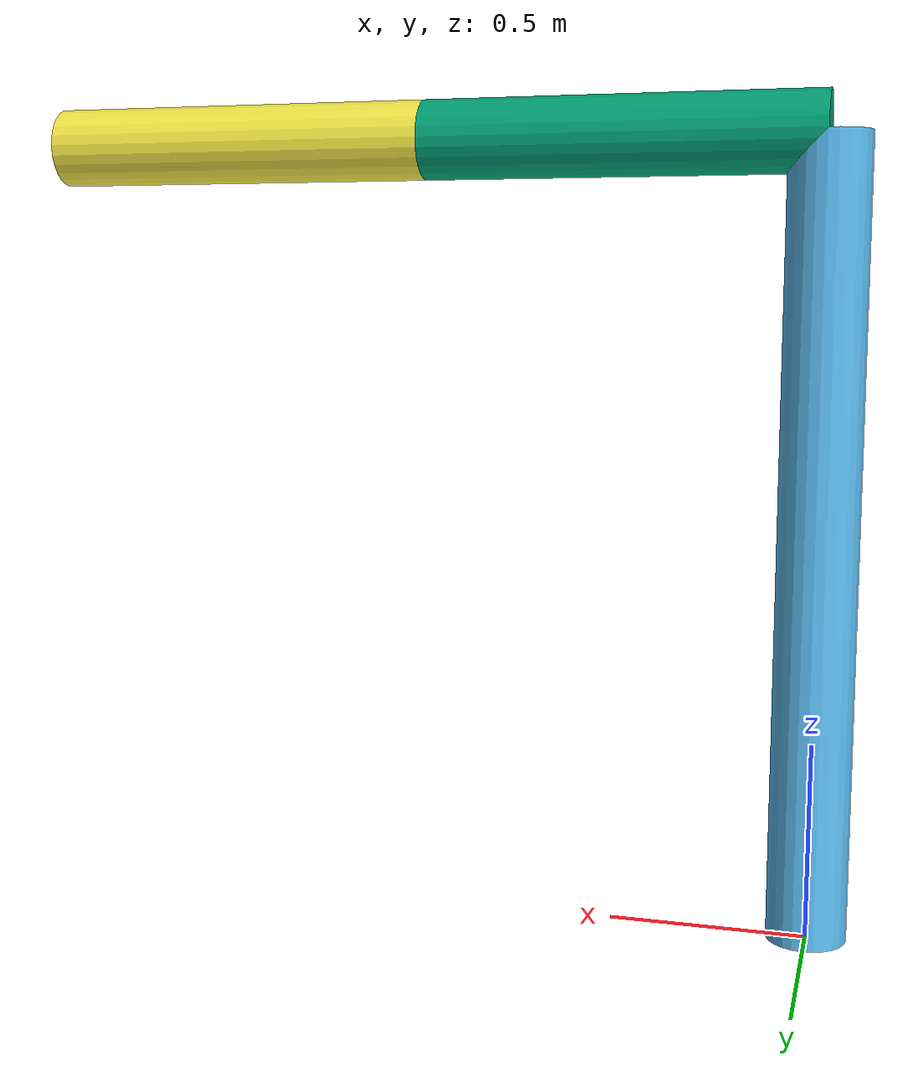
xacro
<?xml version="1.0" ?>

<robot name="robot_arm" xmlns:xacro="http://www.ros.org/wiki/xacro">

    <!-- BGN - Include -->

    <xacro:include filename="$(find robot_package)/urdf/links_joints.xacro" />
    <xacro:include filename="$(find robot_package)/urdf/robot_parameters.xacro" />
    <!-- END - Include -->

    <link name="world"/>
    <xacro:m_joint name="${l00}__${l01}"
                   type="revolute"
                   axis_xyz="0 0 1"
                   origin_rpy="0 0 0" origin_xyz="0 0 0"
                   parent="world"
                   child="${l01}"
                   limit_e="1000"
                   limit_l="-6.28319"
                   limit_u="6.28319"
                   limit_v="0.5"/>

    <xacro:m_link_cylinder name="${l01}"
                origin_rpy="0 0 0" origin_xyz="0 0 1"
                mass = "157.633"
                ixx="13.235" ixy="0" ixz="0"
                iyy="13.235" iyz="0"
                izz="9.655"
                radius = "0.1"
                length="2"/>

    <xacro:m_joint name="${l01}__${l02}"
                   type="revolute"
                   axis_xyz="0 -1 0"
                   origin_rpy="0 1.57 0" origin_xyz="0 0 2"
                   parent="${l01}"
                   child="${l02}"
                   limit_e="10"
                   limit_l="-3.14"
                   limit_u="3.14"
                   limit_v="0.5"/>

    <xacro:m_link_cylinder name="${l02}"
                origin_rpy="0 0 0" origin_xyz="0 0 0.5"
                mass = "0.1"
                ixx="0" ixy="0" ixz="0"
                iyy="0" iyz="0"
                izz="0"
                radius = "0.1"
                length="1"/>

    <xacro:m_joint name="${l02}__${l03}"
                   type="revolute"
                   axis_xyz="0 -1 0"
                   origin_rpy="0 0 0" origin_xyz="0 0 1"
                   parent="${l02}"
                   child="${l03}"
                   limit_e="10"
                   limit_l="-3.14"
                   limit_u="3.14"
                   limit_v="0.5"/>

    <xacro:m_link_cylinder name="${l03}"
                origin_rpy="0 0 0" origin_xyz="0 0 0.5"
                mass = "0.05"
                ixx="0" ixy="0" ixz="0"
                iyy="0" iyz="0"
                izz="0"
                radius = "0.1"
                length="1"/>

     <xacro:m_joint name="${l03}__${lee}"
                   type="revolute"
                   axis_xyz="0 1 0"
                   origin_rpy="0 0 0" origin_xyz="0 0 1"
                   parent="${l03}"
                   child="${lee}"
                   limit_e="10"
                   limit_l="0"
                   limit_u="0"
                   limit_v="0.5"/>

    <xacro:m_link_cylinder name="${lee}"
                origin_rpy="0 0 0" origin_xyz="0 0 0"
                mass = "0.05"
                ixx="0" ixy="0" ixz="0"
                iyy="0" iyz="0"
                izz="0"
                radius = "0.01"
                length="0"/>
    <gazebo>
        <plugin name ="gazebo_ros_control" filename="libgazebo_ros_control.so">
        </plugin>
    </gazebo>
</robot>

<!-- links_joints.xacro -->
<robot xmlns:xacro="http://www.ros.org/wiki/xacro">

    <xacro:macro name="m_joint" params="name type axis_xyz origin_rpy origin_xyz parent child limit_e limit_l limit_u limit_v">
        <joint name="${name}" type="${type}">
            <axis xyz="${axis_xyz}" />
            <limit effort="${limit_e}" lower="${limit_l}" upper="${limit_u}" velocity="${limit_v}" />
            <origin rpy="${origin_rpy}" xyz="${origin_xyz}" />
            <parent link="${parent}" />
            <child link="${child}" />
        </joint>

        <transmission name="trans_${name}">
            <type>transmission_interface/SimpleTransmission</type>
            <joint name="${name}">
                <hardwareInterface>hardware_interface/EffortJointInterface</hardwareInterface>
            </joint>
            <actuator name="motor_${name}">
                <hardwareInterface>hardware_interface/EffortJointInterface</hardwareInterface>
                <mechanicalReduction>1</mechanicalReduction>
            </actuator>
        </transmission>
    </xacro:macro>

    <xacro:macro name="m_link_cylinder" params="name origin_xyz origin_rpy radius length mass ixx ixy ixz iyy iyz izz">
        <link name="${name}">
            <gravity>0</gravity>
            <inertial>
                <mass value="${mass}" />
                <origin rpy="${origin_rpy}" xyz="${origin_xyz}" />
                <inertia ixx="${ixx}" ixy="${ixy}" ixz="${ixz}" iyy="${iyy}" iyz="${iyz}" izz="${izz}" />
            </inertial>

            <collision>
                <origin rpy="${origin_rpy}" xyz="${origin_xyz}" />
                <geometry>
                <cylinder radius="${radius}" length="${length}" />
                </geometry>
            </collision>

            <visual>
                <origin rpy="${origin_rpy}" xyz="${origin_xyz}" />
                <geometry>
                    <cylinder radius="${radius}" length="${length}" />
                </geometry>
            </visual>
        </link>
    </xacro:macro>

    <xacro:macro name="m_link_box" params="name origin_xyz origin_rpy size mass ixx ixy ixz iyy iyz izz">
        <link name="${name}">
            <inertial>
                <mass value="${mass}" />
                <origin rpy="${origin_rpy}" xyz="${origin_xyz}" />
                <inertia ixx="${ixx}" ixy="${ixy}" ixz="${ixz}" iyy="${iyy}" iyz="${iyz}" izz="${izz}" />
            </inertial>
            <collision>
                <origin rpy="${origin_rpy}" xyz="${origin_xyz}" />
                <geometry>
                <box size="${size}" />
                </geometry>
            </collision>
            <visual>
                <origin rpy="${origin_rpy}" xyz="${origin_xyz}" />
                <geometry>
                    <box size="${size}" />
                </geometry>
            </visual>
        </link>
    </xacro:macro>
</robot>

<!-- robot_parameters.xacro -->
<robot xmlns:xacro="http://www.ros.org/wiki/xacro">
  <xacro:property name="l00" value="base_link" />
  <xacro:property name="l01" value="link_01" />
  <xacro:property name="l02" value="link_02" />
  <xacro:property name="l03" value="link_03" />
  <xacro:property name="lee" value="link_ee" />
</robot>
